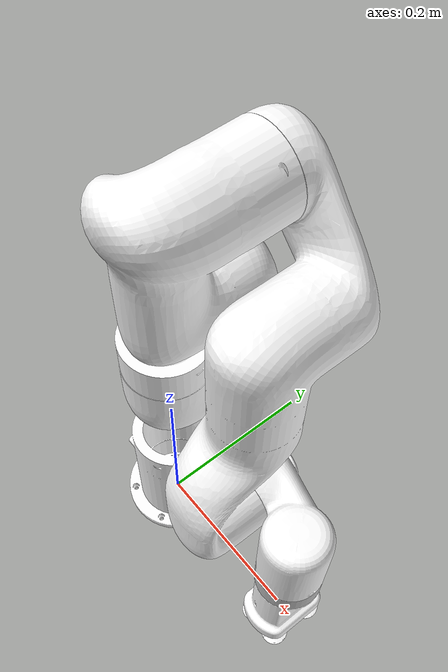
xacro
<?xml version='1.0' encoding='utf-8'?>
<robot xmlns:xacro="http://ros.org/wiki/xacro" name="xarm5">
  <xacro:arg name="prefix" default=""/>
  <xacro:arg name="ros_namespace" default="xarm"/>
  <xacro:arg name="limited" default="false"/>
  <xacro:arg name="effort_control" default="false"/>
  <xacro:arg name="velocity_control" default="false"/>
  <!-- To add realsense d435i and vacuum gripper, set 'add_realsense_d435i' = true -->
  <xacro:arg name="add_realsense_d435i" default="false"/>

  <!-- load xarm5 robot -->
  <xacro:include filename="$(find xarm_description)/urdf/xarm5_robot_macro.xacro" />

  <!-- Attach gripper -->
  <xacro:include filename="$(find xarm_description)/urdf/xarm_vacuum_gripper.urdf.xacro" />

  <xacro:xarm5_robot prefix="$(arg prefix)" namespace="$(arg ros_namespace)" limited="$(arg limited)" effort_control="$(arg effort_control)" velocity_control="$(arg velocity_control)" rs_d435i="$(arg add_realsense_d435i)" />

  <xacro:if value="$(arg add_realsense_d435i)">
    <xacro:xarm_vacuum_gripper_urdf attach_to="$(arg prefix)link_eef" xyz="0 0 0.003" effort_control="$(arg effort_control)" velocity_control="$(arg velocity_control)" />
  </xacro:if>
  <xacro:unless value="$(arg add_realsense_d435i)">
    <xacro:xarm_vacuum_gripper_urdf attach_to="$(arg prefix)link_eef" effort_control="$(arg effort_control)" velocity_control="$(arg velocity_control)" />
  </xacro:unless>
</robot>

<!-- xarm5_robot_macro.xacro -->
<robot xmlns:xacro="http://ros.org/wiki/xacro" name="xarm5" >
  <xacro:macro name="xarm5_robot" params="prefix:='' namespace:='xarm' limited:='false' effort_control:='false'
    velocity_control:='false' attach_to:='world' xyz:='0 0 0' rpy:='0 0 0' load_gazebo_plugin:='true' rs_d435i:='false'
    add_other_geometry:='false'
    geometry_type:='box' geometry_mass:='0.1'
    geometry_radius:='0.1' geometry_height:='0.1'
    geometry_length:='0.1' geometry_width:='0.1'
    geometry_mesh_filename:=''
    geometry_mesh_origin_xyz:='0 0 0'
    geometry_mesh_origin_rpy:='0 0 0'
    geometry_mesh_tcp_xyz:='0 0 0'
    geometry_mesh_tcp_rpy:='0 0 0' ">

    <!-- include xarm5 relative macros: -->
    <xacro:include filename="$(find xarm_description)/urdf/xarm5.urdf.xacro" />
    <xacro:include filename="$(find xarm_description)/urdf/xarm5.transmission.xacro" />
    <xacro:include filename="$(find xarm_description)/urdf/xarm5.gazebo.xacro" />

    <!-- gazebo_plugin -->
    <xacro:if value="${load_gazebo_plugin}">
    <xacro:include filename="$(find xarm_description)/urdf/common.gazebo.xacro" />
    <xacro:gazebo_ros_control_plugin namespace="${namespace}"/>
    </xacro:if>

    <!-- add one world link if no 'attach_to' specified  -->
    <xacro:if value="${attach_to == 'world'}">
      <link name="world" />
    </xacro:if>

    <joint name="world_joint" type="fixed">
      <parent link="${attach_to}" />
      <child link = "${prefix}link_base" />
      <origin xyz="${xyz}" rpy="${rpy}" />
    </joint>

    <xacro:if value="${limited}">
      <xacro:xarm5_urdf prefix="${prefix}"
        joint1_lower_limit="${-pi*0.99}" joint1_upper_limit="${pi*0.99}"
        joint2_lower_limit="${-2.059}" joint2_upper_limit="${2.0944}"
        joint3_lower_limit="${-pi*0.99}" joint3_upper_limit="${0.19198}"
        joint4_lower_limit="${-1.69297}" joint4_upper_limit="${pi*0.99}"
        joint5_lower_limit="${-pi*0.99}" joint5_upper_limit="${pi*0.99}"
        rs_d435i="${rs_d435i}"/>
    </xacro:if>
    <xacro:unless value="${limited}">
      <xacro:xarm5_urdf prefix="${prefix}" rs_d435i="${rs_d435i}"/>
    </xacro:unless>

    <xacro:xarm5_transmission prefix="${prefix}" hard_interface="$(eval 'EffortJointInterface' if ${effort_control} else 'VelocityJointInterface' if ${velocity_control} else 'PositionJointInterface')" />

    <xacro:xarm5_gazebo prefix="${prefix}" />

    <xacro:if value="${add_other_geometry}">
      <xacro:include filename="$(find xarm_description)/urdf/other_geometry.urdf.xacro" />
      <xacro:other_geometry prefix="${prefix}" attach_to="${prefix}link_eef"
        geometry_type="${geometry_type}" geometry_mass="${geometry_mass}"
        geometry_height="${geometry_height}" geometry_radius="${geometry_radius}"
        geometry_length="${geometry_length}" geometry_width="${geometry_width}"
        geometry_mesh_filename="${geometry_mesh_filename}"
        geometry_mesh_origin_xyz="${geometry_mesh_origin_xyz}" geometry_mesh_origin_rpy="${geometry_mesh_origin_rpy}"
        geometry_mesh_tcp_xyz="${geometry_mesh_tcp_xyz}" geometry_mesh_tcp_rpy="${geometry_mesh_tcp_rpy}"
      />
    </xacro:if>

  </xacro:macro>

</robot>

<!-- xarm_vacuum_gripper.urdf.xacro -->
<robot xmlns:xacro="http://ros.org/wiki/xacro" name="xarm_vacuum_gripper">
  <xacro:macro name="xarm_vacuum_gripper_urdf" params="prefix:='' attach_to:='' rpy:='0 0 0' xyz:='0 0 0' effort_control:='false' velocity_control:='false' ">
  <xacro:unless value="${attach_to == ''}">
    <joint name="${prefix}vacuum_gripper_fix" type="fixed">
      <parent link="${attach_to}"/>
      <child link="${prefix}xarm_vacuum_gripper_link"/>
      <origin xyz="${xyz}" rpy="${rpy}"/>
    </joint>
  </xacro:unless>
  <link
    name="${prefix}xarm_vacuum_gripper_link">
    <inertial>
      <origin
        xyz="0.0 0.0 0.055"
        rpy="0 0 0" />
      <mass
        value="0.656" />
      <inertia
        ixx="0.00047106"
        ixy="3.9292E-07"
        ixz="2.6537E-06"
        iyy="0.00033072"
        iyz="-1.0975E-05"
        izz="0.00025642" />
    </inertial>
    <visual>
      <origin
        xyz="0 0 0"
        rpy="0 0 0" />
      <geometry>
        <mesh
          filename="package://xarm_description/meshes/vacuum_gripper/visual/vacuum_gripper.STL" />
      </geometry>
      <material name="White">
        <color rgba="1.0 1.0 1.0 1.0"/>
      </material>
    </visual>
    <collision>
      <origin
        xyz="0 0 0"
        rpy="0 0 0" />
      <geometry>
        <mesh
          filename="package://xarm_description/meshes/vacuum_gripper/collision/vacuum_gripper.STL" />
      </geometry>
    </collision>
  </link>

  <link name="${prefix}link_tcp" />

  <joint
    name="${prefix}joint_tcp"
    type="fixed">
    <origin
      xyz="0 0 0.126"
      rpy="0 0 0" />
    <parent
      link="${prefix}xarm_vacuum_gripper_link" />
    <child
      link="${prefix}link_tcp" />
  </joint>

  </xacro:macro>

</robot>

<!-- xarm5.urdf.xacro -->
<robot xmlns:xacro="http://ros.org/wiki/xacro">

  <xacro:macro name="xarm5_urdf" params="prefix
    joint1_lower_limit:=${-2.0*pi}  joint1_upper_limit:=${2.0*pi}
    joint2_lower_limit:=${-2.059}  joint2_upper_limit:=${2.0944}
    joint3_lower_limit:=${-3.927}  joint3_upper_limit:=${0.19198}
    joint4_lower_limit:=${-1.69297}  joint4_upper_limit:=${pi}
    joint5_lower_limit:=${-2.0*pi}  joint5_upper_limit:=${2.0*pi}
    rs_d435i:=false">

    <material name="Black">
      <color rgba="0.0 0.0 0.0 1.0"/>
    </material>

    <material name="Red">
      <color rgba="0.8 0.0 0.0 1.0"/>
    </material>

    <material name="White">
      <color rgba="1.0 1.0 1.0 1.0"/>
    </material>

    <material name="Silver">
      <color rgba="0.753 0.753 0.753 1.0"/>
    </material>

    <link
      name="${prefix}link_base">
      <inertial>
        <origin
          xyz="-0.00218 -0.00023 0.08604"
          rpy="0 0 0" />
        <mass
          value="1.95" />
        <inertia
          ixx="0.004805"
          ixy="-8.33E-06"
          ixz="0.00026847"
          iyy="0.0050349"
          iyz="7.23E-06"
          izz="0.0025418" />
      </inertial>
      <visual>
        <origin
          xyz="0 0 0"
          rpy="0 0 0" />
        <geometry>
          <mesh
            filename="package://xarm_description/meshes/xarm5/visual/base_link.STL" />
        </geometry>
        <material name="White" />
      </visual>
      <collision>
        <origin
          xyz="0 0 0"
          rpy="0 0 0" />
        <geometry>
          <mesh
            filename="package://xarm_description/meshes/xarm5/visual/base_link.STL" />
        </geometry>
      </collision>
    </link>
    <link
      name="${prefix}link1">
      <inertial>
        <origin
          xyz="0.00016 0.02064 -0.01556"
          rpy="0 0 0" />
        <mass
          value="1.85" />
        <inertia
          ixx="0.0046885"
          ixy="-8.67E-06"
          ixz="2.439E-05"
          iyy="0.0041688"
          iyz="0.0006114"
          izz="0.0024758" />
      </inertial>
      <visual>
        <origin
          xyz="0 0 0"
          rpy="0 0 0" />
        <geometry>
          <mesh
            filename="package://xarm_description/meshes/xarm5/visual/link1.STL" />
        </geometry>
        <material name="White" />
      </visual>
      <collision>
        <origin
          xyz="0 0 0"
          rpy="0 0 0" />
        <geometry>
          <mesh
            filename="package://xarm_description/meshes/xarm5/visual/link1.STL" />
        </geometry>
      </collision>
    </link>
    <joint
      name="${prefix}joint1"
      type="revolute">
      <origin
        xyz="0 0 0.267"
        rpy="0 0 0" />
      <parent
        link="${prefix}link_base" />
      <child
        link="${prefix}link1" />
      <axis
        xyz="0 0 1" />
     <limit
        lower="${joint1_lower_limit}"
        upper="${joint1_upper_limit}"
        effort="50"
        velocity="3.14" />
      <dynamics
        damping="10"
        friction="1" />
    </joint>
    <link
      name="${prefix}link2">
      <inertial>
        <origin
          xyz="0.0351 -0.21375 0.02835"
          rpy="0 0 0" />
        <mass
          value="1.71" />
        <inertia
          ixx="0.024904"
          ixy="-0.004271"
          ixz="-0.0008356"
          iyy="0.004901"
          iyz="0.0052393"
          izz="0.0238188" />
      </inertial>
      <visual>
        <origin
          xyz="0 0 0"
          rpy="0 0 0" />
        <geometry>
          <mesh
            filename="package://xarm_description/meshes/xarm5/visual/link2.STL" />
        </geometry>
        <material name="White" />
      </visual>
      <collision>
        <origin
          xyz="0 0 0"
          rpy="0 0 0" />
        <geometry>
          <mesh
            filename="package://xarm_description/meshes/xarm5/visual/link2.STL" />
        </geometry>
      </collision>
    </link>
    <joint
      name="${prefix}joint2"
      type="revolute">
      <origin
        xyz="0 0 0"
        rpy="-1.5708 0 0" />
      <parent
        link="${prefix}link1" />
      <child
        link="${prefix}link2" />
      <axis
        xyz="0 0 1" />
      <limit
        lower="${joint2_lower_limit}"
        upper="${joint2_upper_limit}"
        effort="50"
        velocity="3.14" />
      <dynamics
        damping="10"
        friction="1" />
    </joint>
    <link
      name="${prefix}link3">
      <inertial>
        <origin
          xyz="0.06716 0.2299 -0.00249"
          rpy="0 0 0" />
        <mass
          value="1.74" />
        <inertia
          ixx="0.0335922"
          ixy="0.0040788"
          ixz="-0.0014658"
          iyy="0.0055857"
          iyz="-0.0080609"
          izz="0.0318905" />
      </inertial>
      <visual>
        <origin
          xyz="0 0 0"
          rpy="0 0 0" />
        <geometry>
          <mesh
            filename="package://xarm_description/meshes/xarm5/visual/link3.STL" />
        </geometry>
        <material name="White" />
      </visual>
      <collision>
        <origin
          xyz="0 0 0"
          rpy="0 0 0" />
        <geometry>
          <mesh
            filename="package://xarm_description/meshes/xarm5/visual/link3.STL" />
        </geometry>
      </collision>
    </link>
    <joint
      name="${prefix}joint3"
      type="revolute">
      <origin
        xyz="0.0535 -0.2845 0"
        rpy="0 0 0" />
      <parent
        link="${prefix}link2" />
      <child
        link="${prefix}link3" />
      <axis
        xyz="0 0 1" />
      <limit
        lower="${joint3_lower_limit}"
        upper="${joint3_upper_limit}"
        effort="30"
        velocity="3.14" />
      <dynamics
        damping="5"
        friction="1" />
    </joint>
    <link
      name="${prefix}link4">
      <inertial>
        <origin
          xyz="0.0636 0.02203 0.00355"
          rpy="0 0 0" />
        <mass
          value="1.13" />
        <inertia
          ixx="0.0010927"
          ixy="0.0003076"
          ixz="-0.0002076"
          iyy="0.0016058"
          iyz="-8.863E-05"
          izz="0.0019148" />
      </inertial>
      <visual>
        <origin
          xyz="0 0 0"
          rpy="0 0 0" />
        <geometry>
          <mesh
            filename="package://xarm_description/meshes/xarm5/visual/link4.STL" />
        </geometry>
        <material name="White" />
      </visual>
      <collision>
        <origin
          xyz="0 0 0"
          rpy="0 0 0" />
        <geometry>
          <mesh
            filename="package://xarm_description/meshes/xarm5/visual/link4.STL" />
        </geometry>
      </collision>
    </link>
    <joint
      name="${prefix}joint4"
      type="revolute">
      <origin
        xyz="0.0775 0.3425 0"
        rpy="0 0 0" />
      <parent
        link="${prefix}link3" />
      <child
        link="${prefix}link4" />
      <axis
        xyz="0 0 1" />
      <limit
        lower="${joint4_lower_limit}"
        upper="${joint4_upper_limit}"
        effort="20"
        velocity="3.14" />
      <dynamics
        damping="3"
        friction="1" />
    </joint>
    <link
      name="${prefix}link5">
      <inertial>
        <origin
          xyz="-3E-05 -0.00677 -0.01098"
          rpy="0 0 0" />
        <mass
          value="0.16" />
        <inertia
          ixx="9.341E-05"
          ixy="0.0"
          ixz="0.0"
          iyy="5.87E-05"
          iyz="3.57E-06"
          izz="1.33E-05" />
      </inertial>
      <visual>
        <origin
          xyz="0 0 0"
          rpy="0 0 0" />
        <geometry>
          <mesh
            filename="package://xarm_description/meshes/xarm5/visual/link5.STL" />
        </geometry>
        <material name="Silver" />
      </visual>
      <collision>
        <origin
          xyz="0 0 0"
          rpy="0 0 0" />
        <geometry>
          <mesh
            filename="package://xarm_description/meshes/collision/end_tool.STL" />
        </geometry>
      </collision>
    </link>
    <joint
      name="${prefix}joint5"
      type="revolute">
      <origin
        xyz="0.076 0.097 0"
        rpy="-1.5708 0 0" />
      <parent
        link="${prefix}link4" />
      <child
        link="${prefix}link5" />
      <axis
        xyz="0 0 1" />
      <limit
        lower="${joint5_lower_limit}"
        upper="${joint5_upper_limit}"
        effort="20"
        velocity="3.14" />
      <dynamics
        damping="3"
        friction="1" />
    </joint>

  <xacro:if value="${rs_d435i}">
    <link name="${prefix}link_eef">
      <visual>
        <origin
          xyz="0 0 0"
          rpy="0 0 0" />
        <geometry>
          <mesh
            filename="package://d435i_xarm_setup/mesh/d435_with_cam_stand.STL" />
        </geometry>
        <material name="Silver" />
      </visual>
      <collision>
        <origin
          xyz="0 0 0"
          rpy="0 0 0" />
        <geometry>
          <mesh
            filename="package://d435i_xarm_setup/mesh/d435_with_cam_stand_collision.STL" />
        </geometry>
      </collision>
    </link>
  </xacro:if>

  <xacro:unless value="${rs_d435i}">
    <link name="${prefix}link_eef"/>
  </xacro:unless>

  <joint
    name="${prefix}joint_eef"
    type="fixed">
    <origin
      xyz="0 0 0"
      rpy="0 0 0" />
    <parent
      link="${prefix}link5" />
    <child
      link="${prefix}link_eef" />
  </joint>

  </xacro:macro>
</robot>
